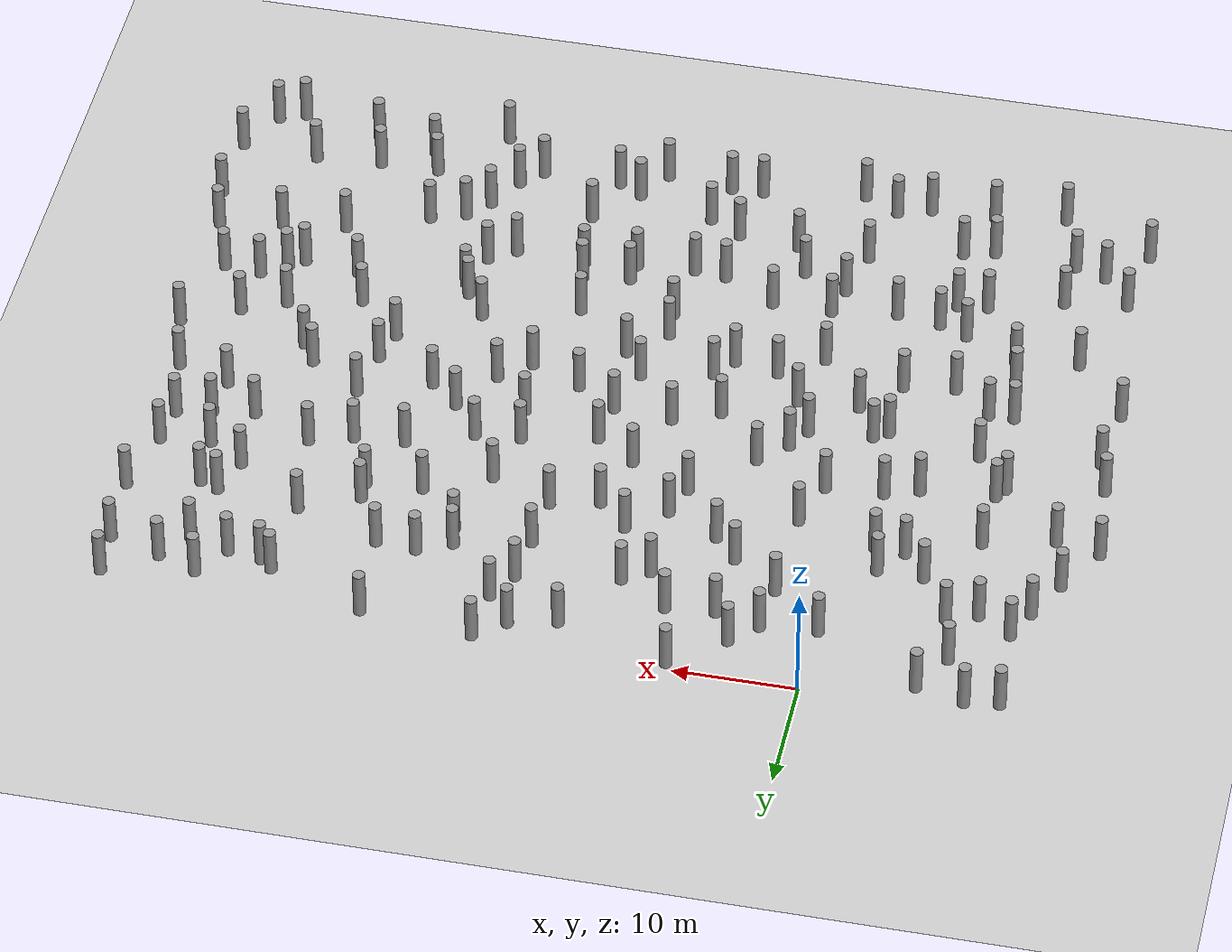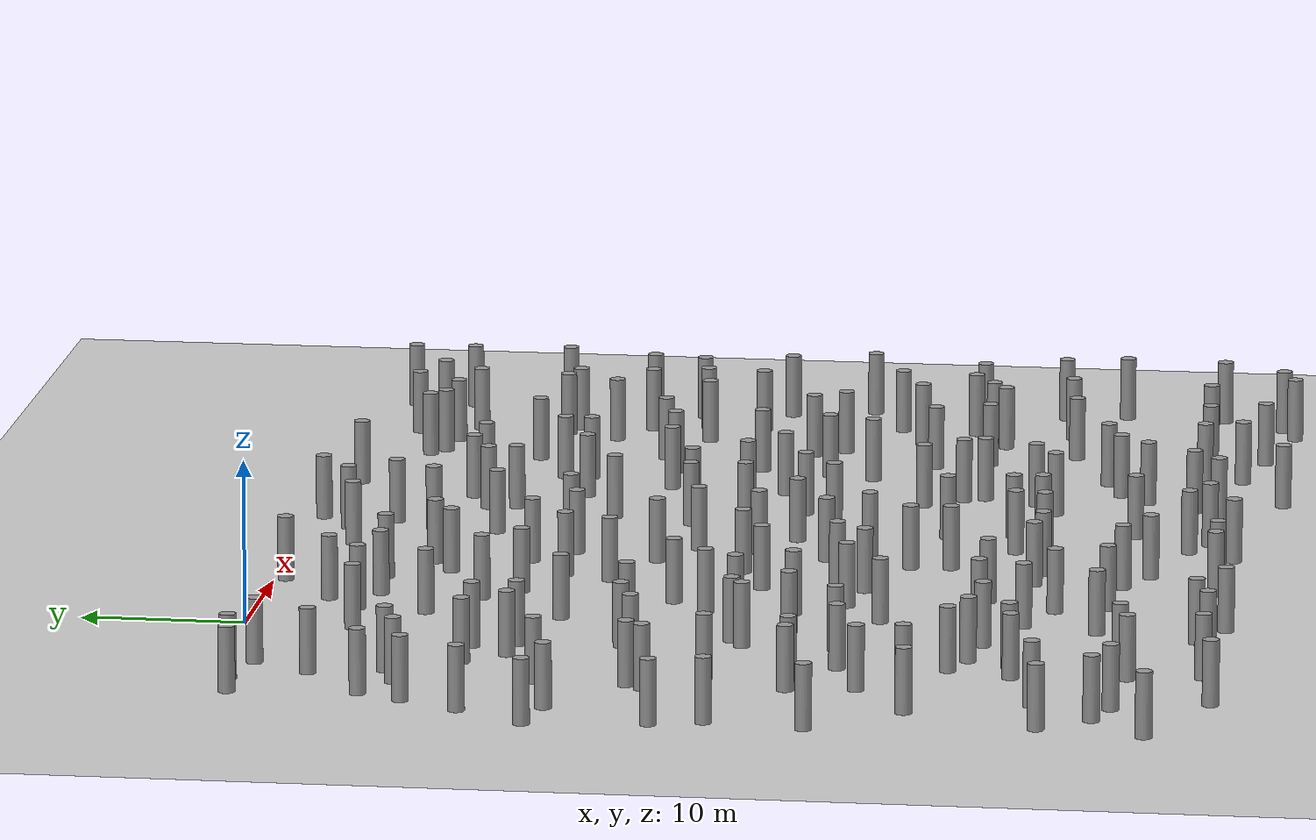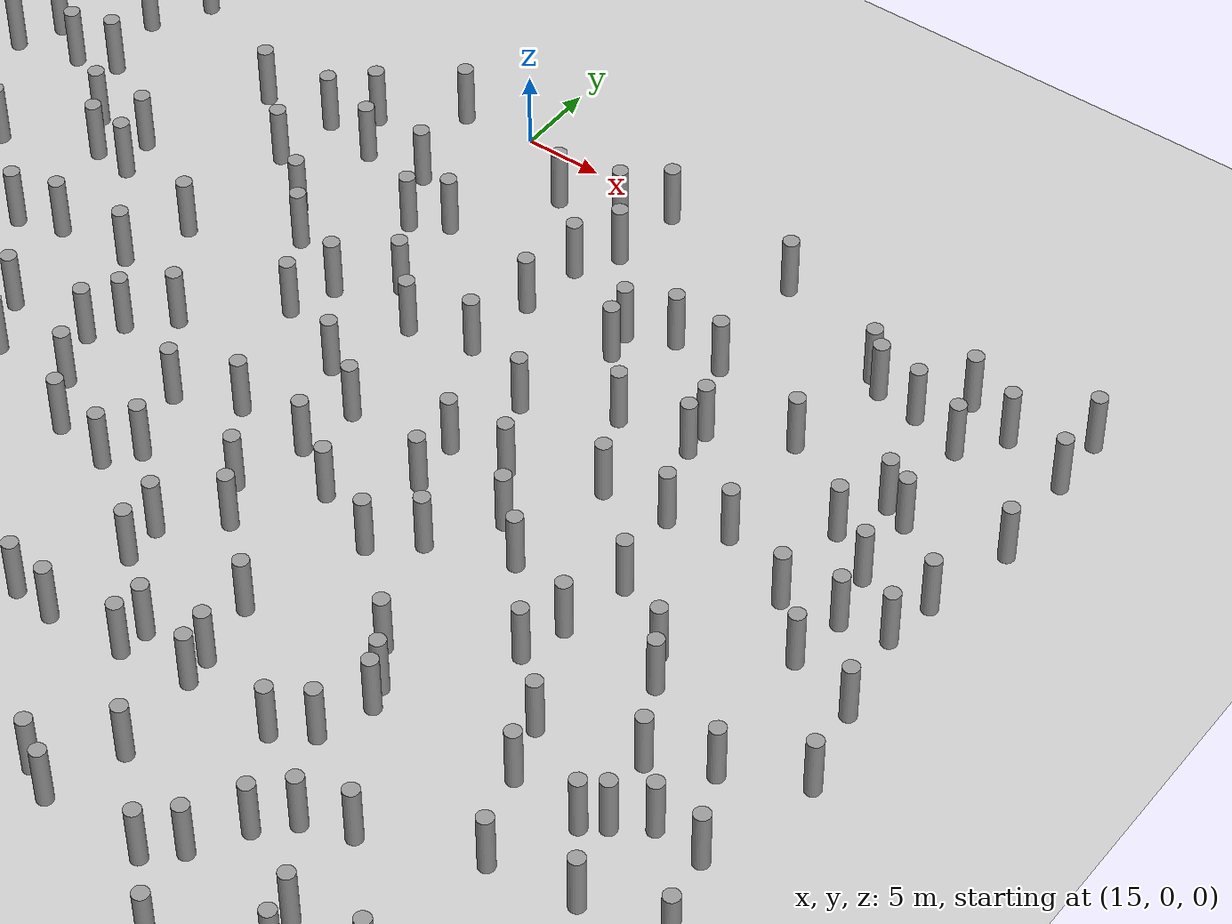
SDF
<sdf version="1.6">
 <world name="default">
  <model name="ground_plane">
   <static>1</static>
   <link name="link">
    <collision name="collision">
     <geometry><plane><normal>0 0 1</normal><size>200 200</size></plane></geometry>
     <surface><friction><ode><mu>100</mu><mu2>50</mu2></ode></friction></surface>
    </collision>
    <visual name="visual">
     <cast_shadows>0</cast_shadows>
     <geometry><plane><normal>0 0 1</normal><size>200 200</size></plane></geometry>
     <material>
      <script><uri>file://media/materials/scripts/gazebo.material</uri><name>Gazebo/Grey</name></script>
     </material>
    </visual>
   </link>
   <pose>0 100 0 0 0 0</pose>
  </model>
  <include>
   <name>tree_-20.4909464284_-19.6293294304</name>
   <uri>model://tree</uri>
   <pose>-20.4909464284 -19.6293294304 2 0 0 0</pose>
  </include>
  <include>
   <name>tree_-18.8921796108_-55.6377577594</name>
   <uri>model://tree</uri>
   <pose>-18.8921796108 -55.6377577594 2 0 0 0</pose>
  </include>
  <include>
   <name>tree_-15.7102484326_-52.3154629425</name>
   <uri>model://tree</uri>
   <pose>-15.7102484326 -52.3154629425 2 0 0 0</pose>
  </include>
  <include>
   <name>tree_-17.9902378848_-49.3039027302</name>
   <uri>model://tree</uri>
   <pose>-17.9902378848 -49.3039027302 2 0 0 0</pose>
  </include>
  <include>
   <name>tree_-15.3280725202_-41.3342759369</name>
   <uri>model://tree</uri>
   <pose>-15.3280725202 -41.3342759369 2 0 0 0</pose>
  </include>
  <include>
   <name>tree_-19.582215396_-35.9664010884</name>
   <uri>model://tree</uri>
   <pose>-19.582215396 -35.9664010884 2 0 0 0</pose>
  </include>
  <include>
   <name>tree_-18.9043564839_-30.0555923908</name>
   <uri>model://tree</uri>
   <pose>-18.9043564839 -30.0555923908 2 0 0 0</pose>
  </include>
  <include>
   <name>tree_-19.7125047834_-26.9347114726</name>
   <uri>model://tree</uri>
   <pose>-19.7125047834 -26.9347114726 2 0 0 0</pose>
  </include>
  <include>
   <name>tree_-16.8547743426_-20.4034549204</name>
   <uri>model://tree</uri>
   <pose>-16.8547743426 -20.4034549204 2 0 0 0</pose>
  </include>
  <include>
   <name>tree_-18.0535570888_-15.4651952906</name>
   <uri>model://tree</uri>
   <pose>-18.0535570888 -15.4651952906 2 0 0 0</pose>
  </include>
  <include>
   <name>tree_-16.2913474457_-11.8896650386</name>
   <uri>model://tree</uri>
   <pose>-16.2913474457 -11.8896650386 2 0 0 0</pose>
  </include>
  <include>
   <name>tree_-15.0826052355_-9.18753290174</name>
   <uri>model://tree</uri>
   <pose>-15.0826052355 -9.18753290174 2 0 0 0</pose>
  </include>
  <include>
   <name>tree_-15.5719390035_-1.515933773</name>
   <uri>model://tree</uri>
   <pose>-15.5719390035 -1.515933773 2 0 0 0</pose>
  </include>
  <include>
   <name>tree_-11.3900492772_-58.8970991474</name>
   <uri>model://tree</uri>
   <pose>-11.3900492772 -58.8970991474 2 0 0 0</pose>
  </include>
  <include>
   <name>tree_-13.0877549568_-53.2048283213</name>
   <uri>model://tree</uri>
   <pose>-13.0877549568 -53.2048283213 2 0 0 0</pose>
  </include>
  <include>
   <name>tree_-12.894706962_-48.5593919179</name>
   <uri>model://tree</uri>
   <pose>-12.894706962 -48.5593919179 2 0 0 0</pose>
  </include>
  <include>
   <name>tree_-10.1585602033_-40.7550767584</name>
   <uri>model://tree</uri>
   <pose>-10.1585602033 -40.7550767584 2 0 0 0</pose>
  </include>
  <include>
   <name>tree_-10.6337440483_-38.019642918</name>
   <uri>model://tree</uri>
   <pose>-10.6337440483 -38.019642918 2 0 0 0</pose>
  </include>
  <include>
   <name>tree_-11.2001495713_-33.9178480966</name>
   <uri>model://tree</uri>
   <pose>-11.2001495713 -33.9178480966 2 0 0 0</pose>
  </include>
  <include>
   <name>tree_-11.9516009043_-25.5346227486</name>
   <uri>model://tree</uri>
   <pose>-11.9516009043 -25.5346227486 2 0 0 0</pose>
  </include>
  <include>
   <name>tree_-11.3105809248_-24.5169028236</name>
   <uri>model://tree</uri>
   <pose>-11.3105809248 -24.5169028236 2 0 0 0</pose>
  </include>
  <include>
   <name>tree_-11.1514682884_-19.0004816817</name>
   <uri>model://tree</uri>
   <pose>-11.1514682884 -19.0004816817 2 0 0 0</pose>
  </include>
  <include>
   <name>tree_-12.299962029_-10.8503364111</name>
   <uri>model://tree</uri>
   <pose>-12.299962029 -10.8503364111 2 0 0 0</pose>
  </include>
  <include>
   <name>tree_-10.8052448579_-5.54969811492</name>
   <uri>model://tree</uri>
   <pose>-10.8052448579 -5.54969811492 2 0 0 0</pose>
  </include>
  <include>
   <name>tree_-12.8072871988_-1.1299953419</name>
   <uri>model://tree</uri>
   <pose>-12.8072871988 -1.1299953419 2 0 0 0</pose>
  </include>
  <include>
   <name>tree_-5.54210789485_-57.9910327193</name>
   <uri>model://tree</uri>
   <pose>-5.54210789485 -57.9910327193 2 0 0 0</pose>
  </include>
  <include>
   <name>tree_-6.31950765592_-53.5701733113</name>
   <uri>model://tree</uri>
   <pose>-6.31950765592 -53.5701733113 2 0 0 0</pose>
  </include>
  <include>
   <name>tree_-6.85418869475_-46.7428967782</name>
   <uri>model://tree</uri>
   <pose>-6.85418869475 -46.7428967782 2 0 0 0</pose>
  </include>
  <include>
   <name>tree_-5.72024808926_-42.9098101867</name>
   <uri>model://tree</uri>
   <pose>-5.72024808926 -42.9098101867 2 0 0 0</pose>
  </include>
  <include>
   <name>tree_-6.00669746779_-36.3724198585</name>
   <uri>model://tree</uri>
   <pose>-6.00669746779 -36.3724198585 2 0 0 0</pose>
  </include>
  <include>
   <name>tree_-9.12892445735_-33.8464985718</name>
   <uri>model://tree</uri>
   <pose>-9.12892445735 -33.8464985718 2 0 0 0</pose>
  </include>
  <include>
   <name>tree_-9.23708265118_-28.8676757566</name>
   <uri>model://tree</uri>
   <pose>-9.23708265118 -28.8676757566 2 0 0 0</pose>
  </include>
  <include>
   <name>tree_-5.27159884611_-23.9748229996</name>
   <uri>model://tree</uri>
   <pose>-5.27159884611 -23.9748229996 2 0 0 0</pose>
  </include>
  <include>
   <name>tree_-5.42020605183_-16.6144748796</name>
   <uri>model://tree</uri>
   <pose>-5.42020605183 -16.6144748796 2 0 0 0</pose>
  </include>
  <include>
   <name>tree_-7.33323526071_-14.1797467962</name>
   <uri>model://tree</uri>
   <pose>-7.33323526071 -14.1797467962 2 0 0 0</pose>
  </include>
  <include>
   <name>tree_-9.80495779009_-9.98366247119</name>
   <uri>model://tree</uri>
   <pose>-9.80495779009 -9.98366247119 2 0 0 0</pose>
  </include>
  <include>
   <name>tree_-8.88159507349_-2.04309651086</name>
   <uri>model://tree</uri>
   <pose>-8.88159507349 -2.04309651086 2 0 0 0</pose>
  </include>
  <include>
   <name>tree_-0.210751480821_-57.8312272272</name>
   <uri>model://tree</uri>
   <pose>-0.210751480821 -57.8312272272 2 0 0 0</pose>
  </include>
  <include>
   <name>tree_-3.7259531172_-52.9365826754</name>
   <uri>model://tree</uri>
   <pose>-3.7259531172 -52.9365826754 2 0 0 0</pose>
  </include>
  <include>
   <name>tree_-4.40995564246_-46.4233637036</name>
   <uri>model://tree</uri>
   <pose>-4.40995564246 -46.4233637036 2 0 0 0</pose>
  </include>
  <include>
   <name>tree_-3.37422136387_-43.8817277036</name>
   <uri>model://tree</uri>
   <pose>-3.37422136387 -43.8817277036 2 0 0 0</pose>
  </include>
  <include>
   <name>tree_-1.7843730982_-35.810866949</name>
   <uri>model://tree</uri>
   <pose>-1.7843730982 -35.810866949 2 0 0 0</pose>
  </include>
  <include>
   <name>tree_-1.64765020732_-30.1772997442</name>
   <uri>model://tree</uri>
   <pose>-1.64765020732 -30.1772997442 2 0 0 0</pose>
  </include>
  <include>
   <name>tree_-0.485743173223_-29.4227285773</name>
   <uri>model://tree</uri>
   <pose>-0.485743173223 -29.4227285773 2 0 0 0</pose>
  </include>
  <include>
   <name>tree_-2.52555873707_-23.0582037052</name>
   <uri>model://tree</uri>
   <pose>-2.52555873707 -23.0582037052 2 0 0 0</pose>
  </include>
  <include>
   <name>tree_-2.94696719939_-16.8475273827</name>
   <uri>model://tree</uri>
   <pose>-2.94696719939 -16.8475273827 2 0 0 0</pose>
  </include>
  <include>
   <name>tree_-3.60145749259_-14.2415275512</name>
   <uri>model://tree</uri>
   <pose>-3.60145749259 -14.2415275512 2 0 0 0</pose>
  </include>
  <include>
   <name>tree_-0.337347156231_-6.55497856066</name>
   <uri>model://tree</uri>
   <pose>-0.337347156231 -6.55497856066 2 0 0 0</pose>
  </include>
  <include>
   <name>tree_2.54721694496_-56.9378460462</name>
   <uri>model://tree</uri>
   <pose>2.54721694496 -56.9378460462 2 0 0 0</pose>
  </include>
  <include>
   <name>tree_3.84500451489_-50.8651695949</name>
   <uri>model://tree</uri>
   <pose>3.84500451489 -50.8651695949 2 0 0 0</pose>
  </include>
  <include>
   <name>tree_4.9273432648_-46.3637896853</name>
   <uri>model://tree</uri>
   <pose>4.9273432648 -46.3637896853 2 0 0 0</pose>
  </include>
  <include>
   <name>tree_0.252547733332_-44.3920340464</name>
   <uri>model://tree</uri>
   <pose>0.252547733332 -44.3920340464 2 0 0 0</pose>
  </include>
  <include>
   <name>tree_4.98224895886_-37.7333410548</name>
   <uri>model://tree</uri>
   <pose>4.98224895886 -37.7333410548 2 0 0 0</pose>
  </include>
  <include>
   <name>tree_1.25204368065_-32.6390825048</name>
   <uri>model://tree</uri>
   <pose>1.25204368065 -32.6390825048 2 0 0 0</pose>
  </include>
  <include>
   <name>tree_4.74569219384_-29.0001350906</name>
   <uri>model://tree</uri>
   <pose>4.74569219384 -29.0001350906 2 0 0 0</pose>
  </include>
  <include>
   <name>tree_2.18705306757_-22.7641590602</name>
   <uri>model://tree</uri>
   <pose>2.18705306757 -22.7641590602 2 0 0 0</pose>
  </include>
  <include>
   <name>tree_3.52275559778_-18.593369744</name>
   <uri>model://tree</uri>
   <pose>3.52275559778 -18.593369744 2 0 0 0</pose>
  </include>
  <include>
   <name>tree_3.81521540354_-10.3465997678</name>
   <uri>model://tree</uri>
   <pose>3.81521540354 -10.3465997678 2 0 0 0</pose>
  </include>
  <include>
   <name>tree_4.26070299676_-6.13114591976</name>
   <uri>model://tree</uri>
   <pose>4.26070299676 -6.13114591976 2 0 0 0</pose>
  </include>
  <include>
   <name>tree_5.4660926337_-58.4646231961</name>
   <uri>model://tree</uri>
   <pose>5.4660926337 -58.4646231961 2 0 0 0</pose>
  </include>
  <include>
   <name>tree_9.76977681914_-50.9882296798</name>
   <uri>model://tree</uri>
   <pose>9.76977681914 -50.9882296798 2 0 0 0</pose>
  </include>
  <include>
   <name>tree_8.6269464682_-47.9087803391</name>
   <uri>model://tree</uri>
   <pose>8.6269464682 -47.9087803391 2 0 0 0</pose>
  </include>
  <include>
   <name>tree_5.61017396453_-43.6171335788</name>
   <uri>model://tree</uri>
   <pose>5.61017396453 -43.6171335788 2 0 0 0</pose>
  </include>
  <include>
   <name>tree_8.47125800175_-35.3281617123</name>
   <uri>model://tree</uri>
   <pose>8.47125800175 -35.3281617123 2 0 0 0</pose>
  </include>
  <include>
   <name>tree_6.25342689359_-32.3472420866</name>
   <uri>model://tree</uri>
   <pose>6.25342689359 -32.3472420866 2 0 0 0</pose>
  </include>
  <include>
   <name>tree_5.91694415969_-27.0390673702</name>
   <uri>model://tree</uri>
   <pose>5.91694415969 -27.0390673702 2 0 0 0</pose>
  </include>
  <include>
   <name>tree_8.15763958579_-24.8451957889</name>
   <uri>model://tree</uri>
   <pose>8.15763958579 -24.8451957889 2 0 0 0</pose>
  </include>
  <include>
   <name>tree_9.53062601201_-15.3566229309</name>
   <uri>model://tree</uri>
   <pose>9.53062601201 -15.3566229309 2 0 0 0</pose>
  </include>
  <include>
   <name>tree_7.61031020846_-13.1973223886</name>
   <uri>model://tree</uri>
   <pose>7.61031020846 -13.1973223886 2 0 0 0</pose>
  </include>
  <include>
   <name>tree_7.91925364961_-6.9758015824</name>
   <uri>model://tree</uri>
   <pose>7.91925364961 -6.9758015824 2 0 0 0</pose>
  </include>
  <include>
   <name>tree_6.3492347691_-4.06764225278</name>
   <uri>model://tree</uri>
   <pose>6.3492347691 -4.06764225278 2 0 0 0</pose>
  </include>
  <include>
   <name>tree_13.9618052371_-57.1702184038</name>
   <uri>model://tree</uri>
   <pose>13.9618052371 -57.1702184038 2 0 0 0</pose>
  </include>
  <include>
   <name>tree_14.831268307_-51.4593116069</name>
   <uri>model://tree</uri>
   <pose>14.831268307 -51.4593116069 2 0 0 0</pose>
  </include>
  <include>
   <name>tree_14.9282770062_-46.0448430516</name>
   <uri>model://tree</uri>
   <pose>14.9282770062 -46.0448430516 2 0 0 0</pose>
  </include>
  <include>
   <name>tree_10.5288617632_-43.666608618</name>
   <uri>model://tree</uri>
   <pose>10.5288617632 -43.666608618 2 0 0 0</pose>
  </include>
  <include>
   <name>tree_12.1304399997_-35.9952858833</name>
   <uri>model://tree</uri>
   <pose>12.1304399997 -35.9952858833 2 0 0 0</pose>
  </include>
  <include>
   <name>tree_13.5545626109_-34.1588357511</name>
   <uri>model://tree</uri>
   <pose>13.5545626109 -34.1588357511 2 0 0 0</pose>
  </include>
  <include>
   <name>tree_12.0143960065_-29.7192621</name>
   <uri>model://tree</uri>
   <pose>12.0143960065 -29.7192621 2 0 0 0</pose>
  </include>
  <include>
   <name>tree_12.8400639585_-20.2923850476</name>
   <uri>model://tree</uri>
   <pose>12.8400639585 -20.2923850476 2 0 0 0</pose>
  </include>
  <include>
   <name>tree_13.8143952565_-17.4523612918</name>
   <uri>model://tree</uri>
   <pose>13.8143952565 -17.4523612918 2 0 0 0</pose>
  </include>
  <include>
   <name>tree_13.7999182355_-10.4052623635</name>
   <uri>model://tree</uri>
   <pose>13.7999182355 -10.4052623635 2 0 0 0</pose>
  </include>
  <include>
   <name>tree_11.899522427_-6.67075831366</name>
   <uri>model://tree</uri>
   <pose>11.899522427 -6.67075831366 2 0 0 0</pose>
  </include>
  <include>
   <name>tree_10.5838837464_-0.695498771</name>
   <uri>model://tree</uri>
   <pose>10.5838837464 -0.695498771 2 0 0 0</pose>
  </include>
  <include>
   <name>tree_16.6109552197_-57.0744756241</name>
   <uri>model://tree</uri>
   <pose>16.6109552197 -57.0744756241 2 0 0 0</pose>
  </include>
  <include>
   <name>tree_17.5274000855_-52.9225563809</name>
   <uri>model://tree</uri>
   <pose>17.5274000855 -52.9225563809 2 0 0 0</pose>
  </include>
  <include>
   <name>tree_17.5702125703_-46.3354404792</name>
   <uri>model://tree</uri>
   <pose>17.5702125703 -46.3354404792 2 0 0 0</pose>
  </include>
  <include>
   <name>tree_18.2262710678_-40.6196010188</name>
   <uri>model://tree</uri>
   <pose>18.2262710678 -40.6196010188 2 0 0 0</pose>
  </include>
  <include>
   <name>tree_18.0412961566_-38.1639608132</name>
   <uri>model://tree</uri>
   <pose>18.0412961566 -38.1639608132 2 0 0 0</pose>
  </include>
  <include>
   <name>tree_19.3244734993_-32.8413532006</name>
   <uri>model://tree</uri>
   <pose>19.3244734993 -32.8413532006 2 0 0 0</pose>
  </include>
  <include>
   <name>tree_15.7870876502_-28.1232820373</name>
   <uri>model://tree</uri>
   <pose>15.7870876502 -28.1232820373 2 0 0 0</pose>
  </include>
  <include>
   <name>tree_17.8208131304_-22.5657004693</name>
   <uri>model://tree</uri>
   <pose>17.8208131304 -22.5657004693 2 0 0 0</pose>
  </include>
  <include>
   <name>tree_19.3308978899_-17.3855123104</name>
   <uri>model://tree</uri>
   <pose>19.3308978899 -17.3855123104 2 0 0 0</pose>
  </include>
  <include>
   <name>tree_16.878186262_-14.9693717809</name>
   <uri>model://tree</uri>
   <pose>16.878186262 -14.9693717809 2 0 0 0</pose>
  </include>
  <include>
   <name>tree_15.9043212065_-9.1122861719</name>
   <uri>model://tree</uri>
   <pose>15.9043212065 -9.1122861719 2 0 0 0</pose>
  </include>
  <include>
   <name>tree_19.7442488443_-3.38949402318</name>
   <uri>model://tree</uri>
   <pose>19.7442488443 -3.38949402318 2 0 0 0</pose>
  </include>
  <include>
   <name>tree_22.0946734345_-57.6410774593</name>
   <uri>model://tree</uri>
   <pose>22.0946734345 -57.6410774593 2 0 0 0</pose>
  </include>
  <include>
   <name>tree_23.9097481287_-54.7592231156</name>
   <uri>model://tree</uri>
   <pose>23.9097481287 -54.7592231156 2 0 0 0</pose>
  </include>
  <include>
   <name>tree_22.3702777373_-45.9804183517</name>
   <uri>model://tree</uri>
   <pose>22.3702777373 -45.9804183517 2 0 0 0</pose>
  </include>
  <include>
   <name>tree_22.5764471362_-44.166459919</name>
   <uri>model://tree</uri>
   <pose>22.5764471362 -44.166459919 2 0 0 0</pose>
  </include>
  <include>
   <name>tree_21.0000740715_-35.3242939367</name>
   <uri>model://tree</uri>
   <pose>21.0000740715 -35.3242939367 2 0 0 0</pose>
  </include>
  <include>
   <name>tree_23.9143336686_-30.5027951069</name>
   <uri>model://tree</uri>
   <pose>23.9143336686 -30.5027951069 2 0 0 0</pose>
  </include>
  <include>
   <name>tree_20.5985257396_-28.5016413477</name>
   <uri>model://tree</uri>
   <pose>20.5985257396 -28.5016413477 2 0 0 0</pose>
  </include>
  <include>
   <name>tree_21.0801434917_-24.7147194318</name>
   <uri>model://tree</uri>
   <pose>21.0801434917 -24.7147194318 2 0 0 0</pose>
  </include>
  <include>
   <name>tree_23.290869099_-16.4527983351</name>
   <uri>model://tree</uri>
   <pose>23.290869099 -16.4527983351 2 0 0 0</pose>
  </include>
  <include>
   <name>tree_23.7077281397_-11.7916205299</name>
   <uri>model://tree</uri>
   <pose>23.7077281397 -11.7916205299 2 0 0 0</pose>
  </include>
  <include>
   <name>tree_24.1606919425_-7.75776975845</name>
   <uri>model://tree</uri>
   <pose>24.1606919425 -7.75776975845 2 0 0 0</pose>
  </include>
  <include>
   <name>tree_23.6118962368_-2.49188625833</name>
   <uri>model://tree</uri>
   <pose>23.6118962368 -2.49188625833 2 0 0 0</pose>
  </include>
  <include>
   <name>tree_25.8880690906_-55.8703081213</name>
   <uri>model://tree</uri>
   <pose>25.8880690906 -55.8703081213 2 0 0 0</pose>
  </include>
  <include>
   <name>tree_27.2851438091_-51.1604276898</name>
   <uri>model://tree</uri>
   <pose>27.2851438091 -51.1604276898 2 0 0 0</pose>
  </include>
  <include>
   <name>tree_26.721305781_-45.4527719</name>
   <uri>model://tree</uri>
   <pose>26.721305781 -45.4527719 2 0 0 0</pose>
  </include>
  <include>
   <name>tree_26.4830348196_-43.6772717241</name>
   <uri>model://tree</uri>
   <pose>26.4830348196 -43.6772717241 2 0 0 0</pose>
  </include>
  <include>
   <name>tree_25.7466220577_-39.6372102189</name>
   <uri>model://tree</uri>
   <pose>25.7466220577 -39.6372102189 2 0 0 0</pose>
  </include>
  <include>
   <name>tree_28.1568902446_-32.3021659054</name>
   <uri>model://tree</uri>
   <pose>28.1568902446 -32.3021659054 2 0 0 0</pose>
  </include>
  <include>
   <name>tree_27.582341801_-26.8098435126</name>
   <uri>model://tree</uri>
   <pose>27.582341801 -26.8098435126 2 0 0 0</pose>
  </include>
  <include>
   <name>tree_27.1797689331_-23.4383808342</name>
   <uri>model://tree</uri>
   <pose>27.1797689331 -23.4383808342 2 0 0 0</pose>
  </include>
  <include>
   <name>tree_28.363916774_-18.5293497218</name>
   <uri>model://tree</uri>
   <pose>28.363916774 -18.5293497218 2 0 0 0</pose>
  </include>
  <include>
   <name>tree_29.7604629493_-10.375709915</name>
   <uri>model://tree</uri>
   <pose>29.7604629493 -10.375709915 2 0 0 0</pose>
  </include>
  <include>
   <name>tree_25.6101067916_-5.22365001223</name>
   <uri>model://tree</uri>
   <pose>25.6101067916 -5.22365001223 2 0 0 0</pose>
  </include>
  <include>
   <name>tree_26.0298053113_-0.553786730706</name>
   <uri>model://tree</uri>
   <pose>26.0298053113 -0.553786730706 2 0 0 0</pose>
  </include>
  <include>
   <name>tree_32.3871744293_-55.9022936219</name>
   <uri>model://tree</uri>
   <pose>32.3871744293 -55.9022936219 2 0 0 0</pose>
  </include>
  <include>
   <name>tree_34.1340556416_-54.2393035378</name>
   <uri>model://tree</uri>
   <pose>34.1340556416 -54.2393035378 2 0 0 0</pose>
  </include>
  <include>
   <name>tree_32.465557406_-45.7052905656</name>
   <uri>model://tree</uri>
   <pose>32.465557406 -45.7052905656 2 0 0 0</pose>
  </include>
  <include>
   <name>tree_34.6264599133_-44.2842785624</name>
   <uri>model://tree</uri>
   <pose>34.6264599133 -44.2842785624 2 0 0 0</pose>
  </include>
  <include>
   <name>tree_33.5408180163_-37.3293771458</name>
   <uri>model://tree</uri>
   <pose>33.5408180163 -37.3293771458 2 0 0 0</pose>
  </include>
  <include>
   <name>tree_30.6544677582_-30.2290362859</name>
   <uri>model://tree</uri>
   <pose>30.6544677582 -30.2290362859 2 0 0 0</pose>
  </include>
  <include>
   <name>tree_33.20199624_-26.2915901487</name>
   <uri>model://tree</uri>
   <pose>33.20199624 -26.2915901487 2 0 0 0</pose>
  </include>
  <include>
   <name>tree_30.8917001148_-23.0848092634</name>
   <uri>model://tree</uri>
   <pose>30.8917001148 -23.0848092634 2 0 0 0</pose>
  </include>
  <include>
   <name>tree_33.5450662645_-16.0890926764</name>
   <uri>model://tree</uri>
   <pose>33.5450662645 -16.0890926764 2 0 0 0</pose>
  </include>
  <include>
   <name>tree_30.0857794295_-12.1066087545</name>
   <uri>model://tree</uri>
   <pose>30.0857794295 -12.1066087545 2 0 0 0</pose>
  </include>
  <include>
   <name>tree_32.484505151_-9.07973910656</name>
   <uri>model://tree</uri>
   <pose>32.484505151 -9.07973910656 2 0 0 0</pose>
  </include>
  <include>
   <name>tree_36.2051602896_-59.629273613</name>
   <uri>model://tree</uri>
   <pose>36.2051602896 -59.629273613 2 0 0 0</pose>
  </include>
  <include>
   <name>tree_35.9069885891_-51.1926162687</name>
   <uri>model://tree</uri>
   <pose>35.9069885891 -51.1926162687 2 0 0 0</pose>
  </include>
  <include>
   <name>tree_37.6154952014_-49.3566202513</name>
   <uri>model://tree</uri>
   <pose>37.6154952014 -49.3566202513 2 0 0 0</pose>
  </include>
  <include>
   <name>tree_35.7158170513_-40.9722772758</name>
   <uri>model://tree</uri>
   <pose>35.7158170513 -40.9722772758 2 0 0 0</pose>
  </include>
  <include>
   <name>tree_35.1953435867_-39.6739751442</name>
   <uri>model://tree</uri>
   <pose>35.1953435867 -39.6739751442 2 0 0 0</pose>
  </include>
  <include>
   <name>tree_39.8505811616_-33.4450492617</name>
   <uri>model://tree</uri>
   <pose>39.8505811616 -33.4450492617 2 0 0 0</pose>
  </include>
  <include>
   <name>tree_35.5931643891_-28.3763815736</name>
   <uri>model://tree</uri>
   <pose>35.5931643891 -28.3763815736 2 0 0 0</pose>
  </include>
  <include>
   <name>tree_36.1931008499_-21.1086049393</name>
   <uri>model://tree</uri>
   <pose>36.1931008499 -21.1086049393 2 0 0 0</pose>
  </include>
  <include>
   <name>tree_38.1592068119_-15.7517796335</name>
   <uri>model://tree</uri>
   <pose>38.1592068119 -15.7517796335 2 0 0 0</pose>
  </include>
  <include>
   <name>tree_38.1229181747_-14.0647620504</name>
   <uri>model://tree</uri>
   <pose>38.1229181747 -14.0647620504 2 0 0 0</pose>
  </include>
  <include>
   <name>tree_35.7871929793_-9.34367780081</name>
   <uri>model://tree</uri>
   <pose>35.7871929793 -9.34367780081 2 0 0 0</pose>
  </include>
  <include>
   <name>tree_35.1994598259_-1.4959139018</name>
   <uri>model://tree</uri>
   <pose>35.1994598259 -1.4959139018 2 0 0 0</pose>
  </include>
  <include>
   <name>tree_41.9428319689_-56.6733478363</name>
   <uri>model://tree</uri>
   <pose>41.9428319689 -56.6733478363 2 0 0 0</pose>
  </include>
  <include>
   <name>tree_41.1999099137_-54.3310783421</name>
   <uri>model://tree</uri>
   <pose>41.1999099137 -54.3310783421 2 0 0 0</pose>
  </include>
  <include>
   <name>tree_40.4359018136_-48.3202157901</name>
   <uri>model://tree</uri>
   <pose>40.4359018136 -48.3202157901 2 0 0 0</pose>
  </include>
  <include>
   <name>tree_44.6991116169_-40.3870575335</name>
   <uri>model://tree</uri>
   <pose>44.6991116169 -40.3870575335 2 0 0 0</pose>
  </include>
  <include>
   <name>tree_43.53054293_-37.0305654857</name>
   <uri>model://tree</uri>
   <pose>43.53054293 -37.0305654857 2 0 0 0</pose>
  </include>
  <include>
   <name>tree_40.5960852237_-30.601686172</name>
   <uri>model://tree</uri>
   <pose>40.5960852237 -30.601686172 2 0 0 0</pose>
  </include>
  <include>
   <name>tree_41.4040630814_-26.2098064905</name>
   <uri>model://tree</uri>
   <pose>41.4040630814 -26.2098064905 2 0 0 0</pose>
  </include>
  <include>
   <name>tree_40.3297892526_-20.7973870217</name>
   <uri>model://tree</uri>
   <pose>40.3297892526 -20.7973870217 2 0 0 0</pose>
  </include>
  <include>
   <name>tree_43.8396995482_-19.7471725311</name>
   <uri>model://tree</uri>
   <pose>43.8396995482 -19.7471725311 2 0 0 0</pose>
  </include>
  <include>
   <name>tree_42.762147451_-11.8132937823</name>
   <uri>model://tree</uri>
   <pose>42.762147451 -11.8132937823 2 0 0 0</pose>
  </include>
  <include>
   <name>tree_44.184532466_-5.51164082453</name>
   <uri>model://tree</uri>
   <pose>44.184532466 -5.51164082453 2 0 0 0</pose>
  </include>
  <include>
   <name>tree_43.1705110466_-4.66248446255</name>
   <uri>model://tree</uri>
   <pose>43.1705110466 -4.66248446255 2 0 0 0</pose>
  </include>
  <include>
   <name>tree_47.0295479458_-57.7312636384</name>
   <uri>model://tree</uri>
   <pose>47.0295479458 -57.7312636384 2 0 0 0</pose>
  </include>
  <include>
   <name>tree_46.0476190942_-54.2968791561</name>
   <uri>model://tree</uri>
   <pose>46.0476190942 -54.2968791561 2 0 0 0</pose>
  </include>
  <include>
   <name>tree_46.9975643531_-45.6974528122</name>
   <uri>model://tree</uri>
   <pose>46.9975643531 -45.6974528122 2 0 0 0</pose>
  </include>
  <include>
   <name>tree_49.2953516858_-40.9508574355</name>
   <uri>model://tree</uri>
   <pose>49.2953516858 -40.9508574355 2 0 0 0</pose>
  </include>
  <include>
   <name>tree_49.5382790559_-35.5704934873</name>
   <uri>model://tree</uri>
   <pose>49.5382790559 -35.5704934873 2 0 0 0</pose>
  </include>
  <include>
   <name>tree_46.9203853662_-30.9273053435</name>
   <uri>model://tree</uri>
   <pose>46.9203853662 -30.9273053435 2 0 0 0</pose>
  </include>
  <include>
   <name>tree_45.7394905567_-29.0146682868</name>
   <uri>model://tree</uri>
   <pose>45.7394905567 -29.0146682868 2 0 0 0</pose>
  </include>
  <include>
   <name>tree_48.7847804863_-21.9424454615</name>
   <uri>model://tree</uri>
   <pose>48.7847804863 -21.9424454615 2 0 0 0</pose>
  </include>
  <include>
   <name>tree_48.4424446976_-15.9834555432</name>
   <uri>model://tree</uri>
   <pose>48.4424446976 -15.9834555432 2 0 0 0</pose>
  </include>
  <include>
   <name>tree_49.5621502863_-12.6710030967</name>
   <uri>model://tree</uri>
   <pose>49.5621502863 -12.6710030967 2 0 0 0</pose>
  </include>
  <include>
   <name>tree_46.9701766579_-5.924557385</name>
   <uri>model://tree</uri>
   <pose>46.9701766579 -5.924557385 2 0 0 0</pose>
  </include>
  <include>
   <name>tree_48.9645708595_-3.1150868668</name>
   <uri>model://tree</uri>
   <pose>48.9645708595 -3.1150868668 2 0 0 0</pose>
  </include>
  <include>
   <name>tree_53.7058401272_-59.1064156737</name>
   <uri>model://tree</uri>
   <pose>53.7058401272 -59.1064156737 2 0 0 0</pose>
  </include>
  <include>
   <name>tree_51.5370601334_-53.9118021182</name>
   <uri>model://tree</uri>
   <pose>51.5370601334 -53.9118021182 2 0 0 0</pose>
  </include>
  <include>
   <name>tree_52.2575214398_-45.0031118233</name>
   <uri>model://tree</uri>
   <pose>52.2575214398 -45.0031118233 2 0 0 0</pose>
  </include>
  <include>
   <name>tree_50.5739259242_-40.0592305453</name>
   <uri>model://tree</uri>
   <pose>50.5739259242 -40.0592305453 2 0 0 0</pose>
  </include>
  <include>
   <name>tree_52.5732227928_-38.7087748828</name>
   <uri>model://tree</uri>
   <pose>52.5732227928 -38.7087748828 2 0 0 0</pose>
  </include>
  <include>
   <name>tree_53.030591117_-33.9303534142</name>
   <uri>model://tree</uri>
   <pose>53.030591117 -33.9303534142 2 0 0 0</pose>
  </include>
  <include>
   <name>tree_51.872682882_-25.050255275</name>
   <uri>model://tree</uri>
   <pose>51.872682882 -25.050255275 2 0 0 0</pose>
  </include>
  <include>
   <name>tree_52.2463835713_-21.4063175469</name>
   <uri>model://tree</uri>
   <pose>52.2463835713 -21.4063175469 2 0 0 0</pose>
  </include>
  <include>
   <name>tree_51.4412374221_-17.9330145248</name>
   <uri>model://tree</uri>
   <pose>51.4412374221 -17.9330145248 2 0 0 0</pose>
  </include>
  <include>
   <name>tree_51.0896844505_-13.2891544763</name>
   <uri>model://tree</uri>
   <pose>51.0896844505 -13.2891544763 2 0 0 0</pose>
  </include>
  <include>
   <name>tree_50.2686176388_-6.91830828199</name>
   <uri>model://tree</uri>
   <pose>50.2686176388 -6.91830828199 2 0 0 0</pose>
  </include>
  <include>
   <name>tree_52.1933185737_-4.30524878308</name>
   <uri>model://tree</uri>
   <pose>52.1933185737 -4.30524878308 2 0 0 0</pose>
  </include>
  <include>
   <name>tree_55.8384603648_-58.2426187206</name>
   <uri>model://tree</uri>
   <pose>55.8384603648 -58.2426187206 2 0 0 0</pose>
  </include>
  <include>
   <name>tree_57.9551631888_-54.2829377923</name>
   <uri>model://tree</uri>
   <pose>57.9551631888 -54.2829377923 2 0 0 0</pose>
  </include>
  <include>
   <name>tree_58.1952618193_-47.9644399052</name>
   <uri>model://tree</uri>
   <pose>58.1952618193 -47.9644399052 2 0 0 0</pose>
  </include>
  <include>
   <name>tree_57.4543240283_-44.0879131863</name>
   <uri>model://tree</uri>
   <pose>57.4543240283 -44.0879131863 2 0 0 0</pose>
  </include>
  <include>
   <name>tree_55.6701859723_-38.9897968121</name>
   <uri>model://tree</uri>
   <pose>55.6701859723 -38.9897968121 2 0 0 0</pose>
  </include>
  <include>
   <name>tree_57.567451348_-31.6507948651</name>
   <uri>model://tree</uri>
   <pose>57.567451348 -31.6507948651 2 0 0 0</pose>
  </include>
  <include>
   <name>tree_56.2362310995_-26.4125292379</name>
   <uri>model://tree</uri>
   <pose>56.2362310995 -26.4125292379 2 0 0 0</pose>
  </include>
  <include>
   <name>tree_55.1071978401_-20.8226240367</name>
   <uri>model://tree</uri>
   <pose>55.1071978401 -20.8226240367 2 0 0 0</pose>
  </include>
  <include>
   <name>tree_55.5506426275_-17.5134659347</name>
   <uri>model://tree</uri>
   <pose>55.5506426275 -17.5134659347 2 0 0 0</pose>
  </include>
  <include>
   <name>tree_56.8436683101_-11.8055299999</name>
   <uri>model://tree</uri>
   <pose>56.8436683101 -11.8055299999 2 0 0 0</pose>
  </include>
  <include>
   <name>tree_56.4422278627_-5.61952919909</name>
   <uri>model://tree</uri>
   <pose>56.4422278627 -5.61952919909 2 0 0 0</pose>
  </include>
  <include>
   <name>tree_56.2863886325_-1.76351029073</name>
   <uri>model://tree</uri>
   <pose>56.2863886325 -1.76351029073 2 0 0 0</pose>
  </include>
 </world>
</sdf>
